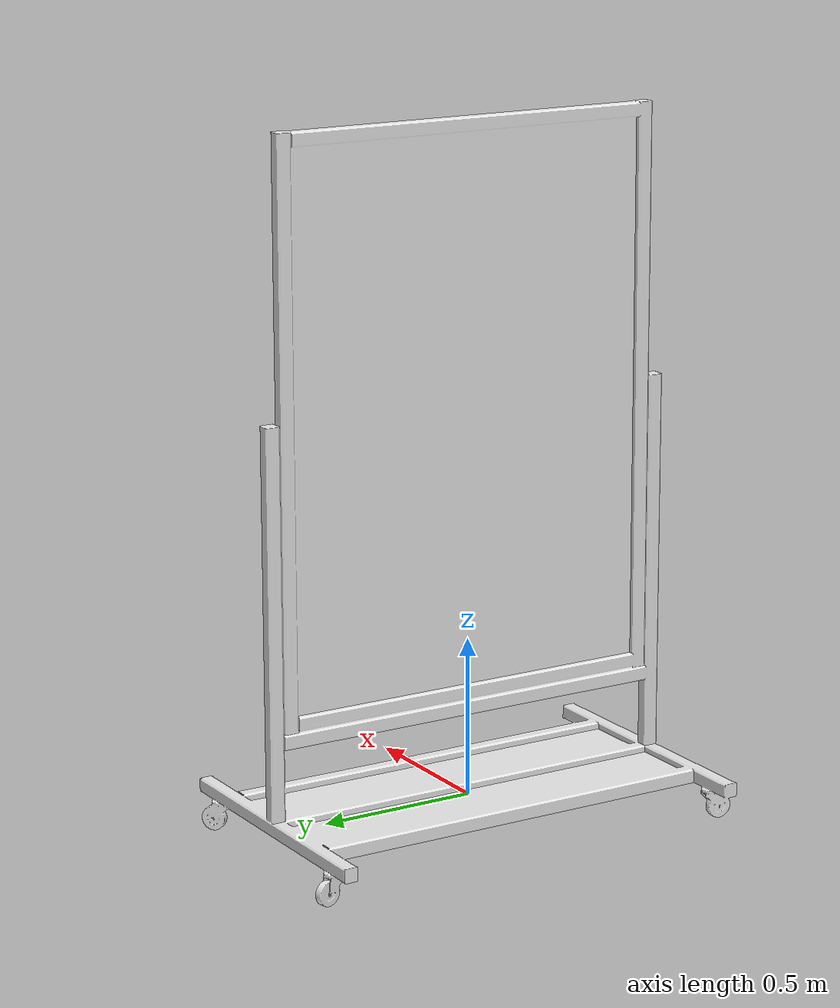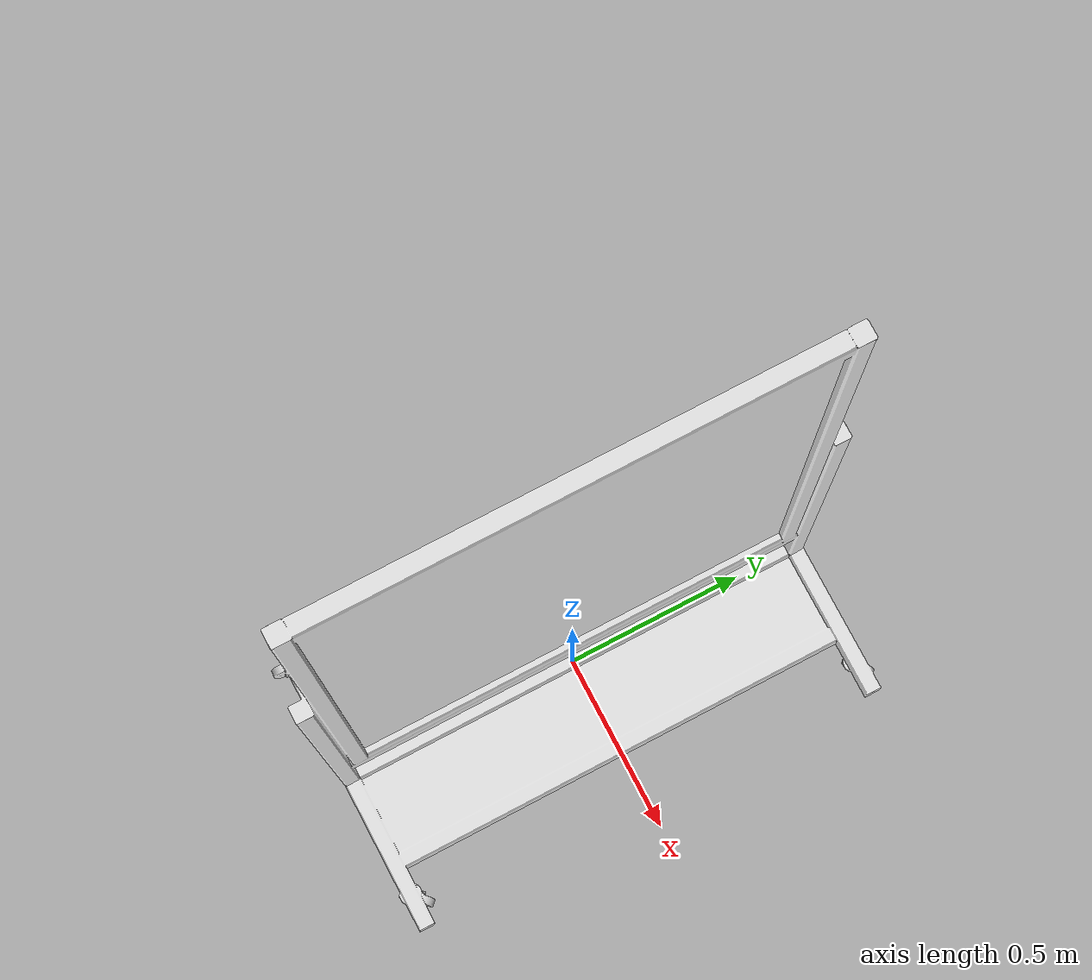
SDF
<?xml version='1.0'?>
<sdf version='1.5'>
  <model name='White_Board'>
    <static>true</static>
    <link name="link">
      <pose>0 0 0 0 0 0</pose>
      <visual name="visual">
            <geometry>
                <mesh>
                    <uri>model://white_board/meshes/white_board.dae</uri>
                </mesh>
            </geometry>

            <material>
                <script>
                    <uri>file://media/materials/scripts/gazebo.material</uri>
                    <name>Gazebo/White</name>
                </script>
            </material>

        </visual>
        <collision name="collision">
            <geometry>
                <mesh>
                   <uri>model://white_board/meshes/white_board.dae</uri>
                </mesh>
            </geometry>
        </collision>
    </link>
  </model>
</sdf>
